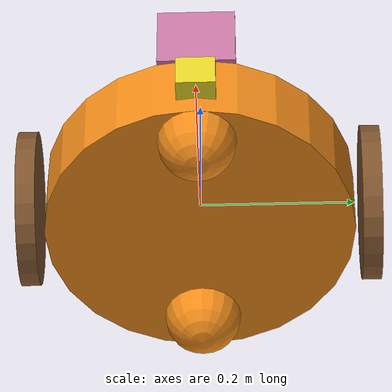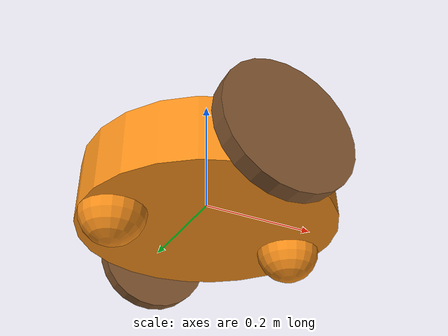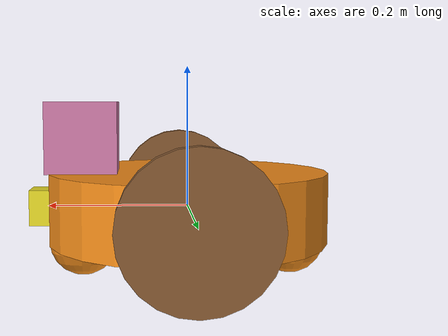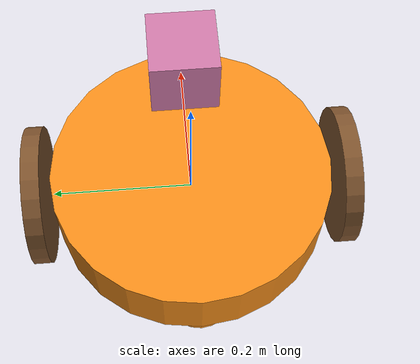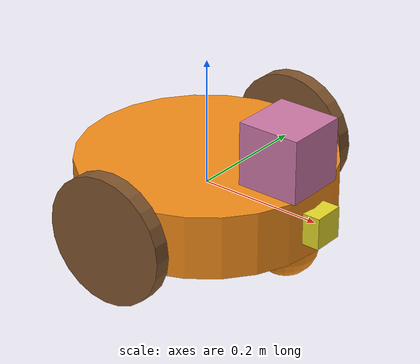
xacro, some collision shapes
<?xml version='1.0'?>

<robot name="my_robot" xmlns:xacro="http://www.ros.org/wiki/xacro">

  <link name="robot_footprint"></link>

  <xacro:include filename="$(find my_robot)/urdf/my_robot.gazebo"/>

  <joint name="robot_footprint_joint" type="fixed">
    <origin xyz="0 0 0" rpy="0 0 0" />
    <parent link="robot_footprint" />
    <child link="chassis" />
  </joint>

  <link name="chassis">
    <pose>0 0 0.1 0 0 0</pose>

    <inertial>
      <mass value="10.0"/>
      <origin xyz="0.0 0 0" rpy="0 0 0"/>
      <inertia
        ixx="0.1" ixy="0" ixz="0"
        iyy="0.1" iyz="0"
        izz="0.1"
      />
    </inertial>

    <collision name='collision'>
      <origin xyz="0 0 0" rpy="0 0 0"/>
      <geometry>
        <cylinder radius="0.2" length="0.1"/>
      </geometry>
    </collision>

    <visual name='chassis_visual'>
      <origin xyz="0 0 0" rpy="0 0 0"/>
      <geometry>
        <cylinder radius="0.2" length="0.1"/>
      </geometry>
    </visual>

    <collision name='back_caster_collision'>
      <origin xyz="-0.15 0 -0.05" rpy="0 0 0"/>
      <geometry>
        <sphere radius="0.0499"/>
      </geometry>
    </collision>

    <visual name='back_caster_visual'>
      <origin xyz="-0.15 0 -0.05" rpy="0 0 0"/>
      <geometry>
        <sphere radius="0.05"/>
      </geometry>
    </visual>

    <collision name='front_caster_collision'>
      <origin xyz="0.15 0 -0.05" rpy="0 0 0"/>
      <geometry>
        <sphere radius="0.0499"/>
      </geometry>
    </collision>

    <visual name='front_caster_visual'>
      <origin xyz="0.15 0 -0.05" rpy="0 0 0"/>
      <geometry>
        <sphere radius="0.05"/>
      </geometry>
    </visual>

  </link>

  <!-- Left wheel link and joint-->

  <link name="left_wheel">
    <pose>0 0 0 0 0 0</pose>

    <inertial>
      <mass value="5.0"/>
      <origin xyz="0.0 0 0" rpy="0 1.5707 1.5707"/>
      <inertia
        ixx="0.1" ixy="0" ixz="0"
        iyy="0.1" iyz="0"
        izz="0.1"
      />
    </inertial>

    <collision name='left_wheel_collision'>
      <origin xyz="0 0 0" rpy="0 1.5707 1.5707"/>
      <geometry>
        <cylinder radius="0.1" length="0.025"/>
      </geometry>
    </collision>

    <visual name='left_wheel_visual'>
      <origin xyz="0 0 0" rpy="0 1.5707 1.5707"/>
      <geometry>
        <cylinder radius="0.1" length="0.025"/>
      </geometry>
    </visual>

  </link>

  <joint type="continuous" name="left_wheel_hinge">
    <origin xyz="0 0.22 0" rpy="0 0 0"/>
    <child link="left_wheel"/>
    <parent link="chassis"/>
    <axis xyz="0 1 0" rpy="0 0 0"/>
    <limit effort="10000" velocity="1000"/>
    <dynamics damping="1.0" friction="1.0"/>
  </joint>

<!-- Right wheel link and joint-->

  <link name="right_wheel">
    <pose>0 0 0 0 0 0</pose>

    <inertial>
      <mass value="5.0"/>
      <origin xyz="0.0 0 0" rpy="0 1.5707 1.5707"/>
      <inertia
        ixx="0.1" ixy="0" ixz="0"
        iyy="0.1" iyz="0"
        izz="0.1"
      />
    </inertial>

    <collision name='right_wheel_collision'>
      <origin xyz="0 0 0" rpy="0 1.5707 1.5707"/>
      <geometry>
        <cylinder radius="0.1" length="0.025"/>
      </geometry>
    </collision>

    <visual name='right_wheel_visual'>
      <origin xyz="0 0 0" rpy="0 1.5707 1.5707"/>
      <geometry>
        <cylinder radius="0.1" length="0.025"/>
      </geometry>
    </visual>

  </link>

  <joint type="continuous" name="right_wheel_hinge">
    <origin xyz="0 -0.22 0" rpy="0 0 0"/>
    <child link="right_wheel"/>
    <parent link="chassis"/>
    <axis xyz="0 1 0" rpy="0 0 0"/>
    <limit effort="10000" velocity="1000"/>
    <dynamics damping="1.0" friction="1.0"/>
  </joint>

  <!-- Camera link and joint-->

  <link name="camera">
    <pose>0 0 0 0 0 0</pose>

    <inertial>
      <mass value="0.1"/>
      <origin xyz="0.0 0 0" rpy="0 0 0"/>
      <inertia
        ixx="1e-6" ixy="0" ixz="0"
        iyy="1e-6" iyz="0"
        izz="1e-6"
      />
    </inertial>

    <collision name='camera_collision'>
      <origin xyz="0 0 0" rpy="0 0 0"/>
      <geometry>
        <box size="0.05 0.05 0.05"/>
      </geometry>
    </collision>

    <visual name='camera_visual'>
      <origin xyz="0 0 0" rpy="0 0 0"/>
      <geometry>
        <box size="0.05 0.05 0.05"/>
      </geometry>
    </visual>
  </link>

  <joint type="fixed" name="camera_joint">
    <origin xyz="0.2 0 0" rpy="0 0 0"/>
    <child link="camera"/>
    <parent link="chassis"/>
    <axis xyz="0 1 0" rpy="0 0 0"/>
  </joint>

  <link name="camera_link_optical">
  </link>

  <joint name="camera_optical_joint" type="fixed">
    <origin xyz="0 0 0" rpy="-1.5707 0 -1.5707"/>
    <parent link="camera"/>
    <child link="camera_link_optical"/>
  </joint>

  <!-- Hokuyuo laser scanner link and joint -->

  <link name="hokuyo">
    <pose>0 0 0 0 0 0</pose>

    <inertial>
      <mass value="1e-5"/>
      <origin xyz="0.0 0 0" rpy="0 0 0"/>
      <inertia
        ixx="1e-6" ixy="0" ixz="0"
        iyy="1e-6" iyz="0"
        izz="1e-6"
      />
    </inertial>

    <collision name='hokuyo_collision'>
      <origin xyz="0 0 0" rpy="0 0 0"/>
      <geometry>
        <box size="0.1 0.1 0.1"/>
      </geometry>
    </collision>

    <visual name='hokuyo_visual'>
      <origin xyz="0 0 0" rpy="0 0 0"/>
      <geometry>
        <mesh filename = "package://my_robot/meshes/hokuyo.dae"/>
      </geometry>
    </visual>
  </link>

  <joint type="fixed" name="hokuyo_joint">
    <origin xyz="0.15 0 0.1" rpy="0 0 0"/>
    <child link="hokuyo"/>
    <parent link="chassis"/>
    <axis xyz="0 1 0" rpy="0 0 0"/>
  </joint>

  <!-- providing color for objects-->

  <gazebo reference="left_wheel">
    <material>Gazebo/Brown</material>
  </gazebo>

  <gazebo reference="right_wheel">
    <material>Gazebo/Brown</material>
  </gazebo>

  <gazebo reference="camera">
    <material>Gazebo/Yellow</material>
  </gazebo>

  <gazebo reference="chassis">
    <material>Gazebo/Orange</material>
  </gazebo>

</robot>
